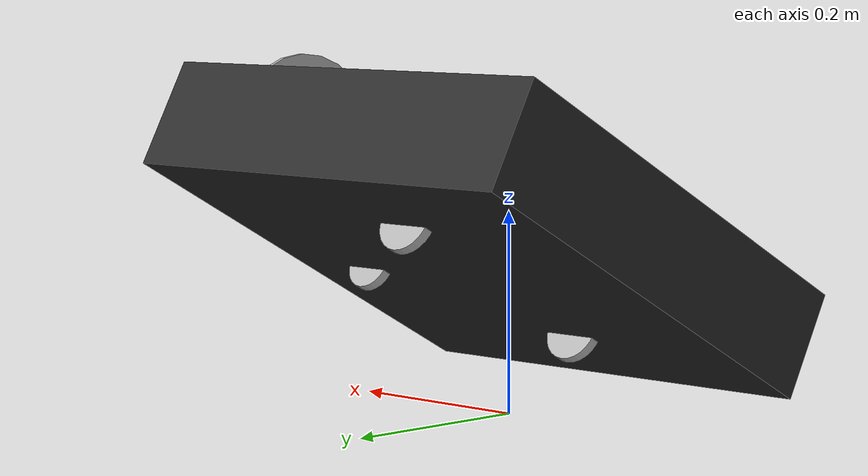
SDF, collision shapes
<?xml version="1.0"?>
<sdf version='1.5'>
  <model name='advanced_plane'>
    <pose>0 0 0.246 0.5 0 0</pose>
    <link name='base_link'>
      <pose>0 0 0 0 0 0</pose>
      <inertial>
        <pose>0 0 0 0 0 0</pose>
        <mass>0.1</mass>
        <inertia>
          <ixx>0.197563</ixx>
          <ixy>0</ixy>
          <ixz>0</ixz>
          <iyy>0.1458929</iyy>
          <iyz>0</iyz>
          <izz>0.1477</izz>
        </inertia>
      </inertial>
      <collision name='base_link_collision'>
        <pose>0 0 -0.07 0 0 0</pose>
        <geometry>
          <box>
            <size>0.47 0.47 0.11</size>
          </box>
        </geometry>
        <surface>
          <contact>
            <ode>
              <max_vel>10</max_vel>
              <min_depth>0.01</min_depth>
            </ode>
          </contact>
          <friction>
            <ode/>
          </friction>
        </surface>
      </collision>
      <visual name='base_link_visual'>
        <pose>0 0 0.5 0 3.14159 3.14159</pose>
        <geometry>
          <mesh>
            <scale>0.00013 0.00013 0.00013</scale>
            <uri>model://paraglider/meshes/strato3D.dae</uri>
          </mesh>
        </geometry>
        <material>
	        <ambient>.175 .175 .175 1.0</ambient>
          <diffuse>.175 .175 .175 1.0</diffuse>
        </material>
      </visual>
      <gravity>1</gravity>
      <velocity_decay/>
      <self_collide>0</self_collide>
      <sensor name="imu_sensor" type="imu">
        <always_on>1</always_on>
        <update_rate>250</update_rate>
        <imu>
          <angular_velocity>
            <x>
              <noise type="gaussian">
                <mean>0</mean>
                <stddev>0.0003394</stddev>
                <dynamic_bias_stddev>3.8785e-05</dynamic_bias_stddev>
                <dynamic_bias_correlation_time>1000</dynamic_bias_correlation_time>
              </noise>
            </x>
            <y>
              <noise type="gaussian">
                <mean>0</mean>
                <stddev>0.0003394</stddev>
                <dynamic_bias_stddev>3.8785e-05</dynamic_bias_stddev>
                <dynamic_bias_correlation_time>1000</dynamic_bias_correlation_time>
              </noise>
            </y>
            <z>
              <noise type="gaussian">
                <mean>0</mean>
                <stddev>0.0003394</stddev>
                <dynamic_bias_stddev>3.8785e-05</dynamic_bias_stddev>
                <dynamic_bias_correlation_time>1000</dynamic_bias_correlation_time>
              </noise>
            </z>
          </angular_velocity>
          <linear_acceleration>
            <x>
              <noise type="gaussian">
                <mean>0</mean>
                <stddev>0.004</stddev>
                <dynamic_bias_stddev>0.006</dynamic_bias_stddev>
                <dynamic_bias_correlation_time>300</dynamic_bias_correlation_time>
              </noise>
            </x>
            <y>
              <noise type="gaussian">
                <mean>0</mean>
                <stddev>0.004</stddev>
                <dynamic_bias_stddev>0.006</dynamic_bias_stddev>
                <dynamic_bias_correlation_time>300</dynamic_bias_correlation_time>
              </noise>
            </y>
            <z>
              <noise type="gaussian">
                <mean>0</mean>
                <stddev>0.004</stddev>
                <dynamic_bias_stddev>0.006</dynamic_bias_stddev>
                <dynamic_bias_correlation_time>300</dynamic_bias_correlation_time>
              </noise>
            </z>
          </linear_acceleration>
        </imu>
      </sensor>
      <sensor name="air_pressure_sensor" type="air_pressure">
        <always_on>1</always_on>
        <update_rate>50</update_rate>
        <air_pressure>
          <pressure>
            <noise type="gaussian">
              <mean>0</mean>
              <stddev>0.01</stddev>
            </noise>
          </pressure>
        </air_pressure>
      </sensor>
      <sensor name="navsat_sensor" type="navsat">
        <always_on>1</always_on>
        <update_rate>30</update_rate>
      </sensor>
    </link>
    <link name='rotor_puller'>
      <pose>0.3 0 0.0 0 1.57 0</pose>
      <inertial>
        <pose>0 0 0 0 0 0</pose>
        <mass>0.005</mass>
        <inertia>
          <ixx>9.75e-07</ixx>
          <ixy>0</ixy>
          <ixz>0</ixz>
          <iyy>0.000166704</iyy>
          <iyz>0</iyz>
          <izz>0.000167604</izz>
        </inertia>
      </inertial>
      <collision name='rotor_puller_collision'>
        <pose>0.0 0 0.0 0 0 0</pose>
        <geometry>
          <cylinder>
            <length>0.005</length>
            <radius>0.1</radius>
          </cylinder>
        </geometry>
        <surface>
          <contact>
            <ode/>
          </contact>
          <friction>
            <ode/>
          </friction>
        </surface>
      </collision>
      <gravity>1</gravity>
      <velocity_decay/>
      <self_collide>0</self_collide>
    </link>
    <joint name='rotor_puller_joint' type='revolute'>
      <child>rotor_puller</child>
      <parent>base_link</parent>
      <axis>
        <xyz>1 0 0</xyz>
        <limit>
          <lower>-1e+16</lower>
          <upper>1e+16</upper>
        </limit>
        <dynamics>
          <spring_reference>0</spring_reference>
          <spring_stiffness>0</spring_stiffness>
        </dynamics>
        <use_parent_model_frame>1</use_parent_model_frame>
      </axis>
    </joint>

    <link name="left_elevon">
      <inertial>
        <mass>0.00000001</mass>
        <inertia>
          <ixx>0.000001</ixx>
          <ixy>0.0</ixy>
          <iyy>0.000001</iyy>
          <ixz>0.0</ixz>
          <iyz>0.0</iyz>
          <izz>0.000001</izz>
        </inertia>
        <pose>0 0.3 0 0.00 0 0.0</pose>
      </inertial>
    </link>
    <link name="right_elevon">
      <inertial>
        <mass>0.00000001</mass>
        <inertia>
          <ixx>0.000001</ixx>
          <ixy>0.0</ixy>
          <iyy>0.000001</iyy>
          <ixz>0.0</ixz>
          <iyz>0.0</iyz>
          <izz>0.000001</izz>
        </inertia>
        <pose>0 -0.3 0 0.00 0 0.0</pose>
      </inertial>
    </link>
    <link name="left_flap">
      <inertial>
        <mass>0.00000001</mass>
        <inertia>
          <ixx>0.000001</ixx>
          <ixy>0.0</ixy>
          <iyy>0.000001</iyy>
          <ixz>0.0</ixz>
          <iyz>0.0</iyz>
          <izz>0.000001</izz>
        </inertia>
        <pose>0 0.15 0 0.00 0 0.0</pose>
      </inertial>
    </link>
    <link name="right_flap">
      <inertial>
        <mass>0.00000001</mass>
        <inertia>
          <ixx>0.000001</ixx>
          <ixy>0.0</ixy>
          <iyy>0.000001</iyy>
          <ixz>0.0</ixz>
          <iyz>0.0</iyz>
          <izz>0.000001</izz>
        </inertia>
        <pose>0 -0.15 0 0.00 0 0.0</pose>
      </inertial>
    </link>
    <link name="elevator">
      <inertial>
        <mass>0.00000001</mass>
        <inertia>
          <ixx>0.000001</ixx>
          <ixy>0.0</ixy>
          <iyy>0.000001</iyy>
          <ixz>0.0</ixz>
          <iyz>0.0</iyz>
          <izz>0.000001</izz>
        </inertia>
        <pose> -0.5 0 0 0.00 0 0.0</pose>
      </inertial>
    </link>
    <joint name='servo_0' type='revolute'>
      <parent>base_link</parent>
      <child>left_elevon</child>
      <pose>-0.07 0.4 0.08 0.00 0 0.0</pose>
      <axis>
        <xyz>0 1 0</xyz>
        <limit>
          <!-- -30/+30 deg. -->
          <lower>-0.53</lower>
          <upper>0.53</upper>
        </limit>
        <dynamics>
          <damping>1.000</damping>
        </dynamics>
      </axis>
      <physics>
        <ode>
          <implicit_spring_damper>1</implicit_spring_damper>
        </ode>
      </physics>
    </joint>
    <plugin
      filename="gz-sim-joint-position-controller-system" name="gz::sim::systems::JointPositionController">
      <joint_name>servo_0</joint_name>
      <sub_topic>servo_0</sub_topic>
      <p_gain>10</p_gain>
      <i_gain>0</i_gain>
      <d_gain>0</d_gain>
    </plugin>
    <joint name='servo_1' type='revolute'>
      <parent>base_link</parent>
      <child>right_elevon</child>
      <pose>-0.07 -0.4 0.08 0.00 0 0.0</pose>
      <axis>
        <xyz>0 1 0</xyz>
        <limit>
          <!-- -30/+30 deg. -->
          <lower>-0.53</lower>
          <upper>0.53</upper>
        </limit>
        <dynamics>
          <damping>1.000</damping>
        </dynamics>
      </axis>
      <physics>
        <ode>
          <implicit_spring_damper>1</implicit_spring_damper>
        </ode>
      </physics>
    </joint>
    <plugin
      filename="gz-sim-joint-position-controller-system" name="gz::sim::systems::JointPositionController">
      <joint_name>servo_1</joint_name>
      <sub_topic>servo_1</sub_topic>
      <p_gain>10</p_gain>
      <i_gain>0</i_gain>
      <d_gain>0</d_gain>
    </plugin>

    <!-- Ajout de roues -->

    <link name="LeftWheel">
      <pose relative_to="LeftWheelJoint">0 0 0 0 0 0</pose>
      <inertial>
        <mass>.05</mass>
        <inertia>
          <ixx>0.00003331</ixx>
          <ixy>0</ixy>
          <ixz>0</ixz>
          <iyy>0.0000204</iyy>
          <iyz>0</iyz>
          <izz>0.0000204</izz>
        </inertia>
      </inertial>
      <gravity>true</gravity>
      <velocity_decay/>
      <collision name="LeftWheelCollision">
        <pose>0 0 0 -1.57079632679 0 0</pose>
        <geometry>
          <cylinder>
            <length>0.01</length>
            <radius>0.03</radius>
          </cylinder>
        </geometry>
        <surface>
          <friction>
            <ode>
              <mu>1.0</mu>
              <mu2>0.5</mu2>
              <fdir1>0 0 1</fdir1>
            </ode>
          </friction>
        </surface>
      </collision>
    </link>
    <link name="RightWheel">
      <pose relative_to="RightWheelJoint">0 0 0 0 0 0</pose>
      <inertial>
        <mass>.05</mass>
        <inertia>
          <ixx>0.00003331</ixx>
          <ixy>0</ixy>
          <ixz>0</ixz>
          <iyy>0.0000204</iyy>
          <iyz>0</iyz>
          <izz>0.0000204</izz>
        </inertia>
      </inertial>
      <gravity>true</gravity>
      <velocity_decay/>
      <collision name="RightWheelCollision">
        <pose>0 0 0 -1.57079632679 0 0</pose>
        <geometry>
          <cylinder>
            <length>0.01</length>
            <radius>0.03</radius>
          </cylinder>
        </geometry>
        <surface>
          <friction>
            <ode>
              <mu>1.0</mu>
              <mu2>0.5</mu2>
              <fdir1>0 0 1</fdir1>
            </ode>
          </friction>
        </surface>
      </collision>
    </link>
    <link name="CenterWheel">
      <pose relative_to="CenterWheelJoint">0 0 0 0 0 0</pose>
      <inertial>
        <mass>.05</mass>
        <inertia>
          <ixx>0.00003331</ixx>
          <ixy>0</ixy>
          <ixz>0</ixz>
          <iyy>0.0000204</iyy>
          <iyz>0</iyz>
          <izz>0.0000204</izz>
        </inertia>
      </inertial>
      <gravity>true</gravity>
      <velocity_decay/>
      <collision name="CenterWheelCollision">
        <pose>0 0 0 -1.57079632679 0 0</pose>
        <geometry>
          <cylinder>
            <length>0.01</length>
            <radius>0.025</radius>
          </cylinder>
        </geometry>
        <surface>
          <friction>
            <ode>
              <mu>1.0</mu>
              <mu2>0.5</mu2>
              <fdir1>0 0 1</fdir1>
            </ode>
          </friction>
        </surface>
      </collision>
    </link>
    <joint name="LeftWheelJoint" type="revolute">
      <parent>base_link</parent>
      <child>LeftWheel</child>
      <pose relative_to="base_link">-.035 .13 -0.12 0 0 0</pose>
      <axis>
        <xyz>0 1 0</xyz>
        <limit>
          <lower>-1.79769e+308</lower>
          <upper>1.79769e+308</upper>
        </limit>
        <dynamics>
          <spring_reference>0</spring_reference>
          <spring_stiffness>0</spring_stiffness>
        </dynamics>
      </axis>
    </joint>
    <joint name="RightWheelJoint" type="revolute">
      <parent>base_link</parent>
      <child>RightWheel</child>
      <pose relative_to="base_link">-.035 -.13 -0.12 0 0 0</pose>
      <axis>
        <xyz>0 1 0</xyz>
        <limit>
          <lower>-1.79769e+308</lower>
          <upper>1.79769e+308</upper>
        </limit>
        <dynamics>
          <spring_reference>0</spring_reference>
          <spring_stiffness>0</spring_stiffness>
        </dynamics>
      </axis>
    </joint>
    <joint name="CenterWheelJoint" type="revolute">
      <parent>base_link</parent>
      <child>CenterWheel</child>
      <pose relative_to="base_link">.135 0 -0.12 0 0 0</pose>
      <axis>
        <xyz>0 1 0</xyz>
        <limit>
          <lower>-1.79769e+308</lower>
          <upper>1.79769e+308</upper>
        </limit>
        <dynamics>
          <spring_reference>0</spring_reference>
          <spring_stiffness>0</spring_stiffness>
        </dynamics>
      </axis>
    </joint>

    <plugin filename="gz-sim-advanced-lift-drag-system" name="gz::sim::systems::AdvancedLiftDrag">
      <a0>-0.00349066</a0>
      <CL0>1.15188</CL0>
      <AR>6.5</AR>
      <eff>0.97</eff>
      <CLa>5.015</CLa>
      <CD0>0.029</CD0>
      <Cem0>0.075</Cem0>
      <Cema>-0.463966</Cema>
      <CYb>-0.258244</CYb>
      <Cellb>-0.039250</Cellb>
      <Cenb>0.100826</Cenb>
      <CDp>0.0</CDp>
      <CYp>0.065861</CYp>
      <CLp>0.0</CLp>
      <Cellp>-0.487407</Cellp>
      <Cemp>0.0</Cemp>
      <Cenp>-0.040416</Cenp>
      <CDq>0.055166</CDq>
      <CYq>0.0</CYq>
      <CLq>7.971792</CLq>
      <Cellq>0.0</Cellq>
      <Cemq>-12.140140</Cemq>
      <Cenq>0.0</Cenq>
      <CDr>0.0</CDr>
      <CYr>0.230299</CYr>
      <CLr>0.0</CLr>
      <Cellr>0.078165</Cellr>
      <Cemr>0.0</Cemr>
      <Cenr>-0.089947</Cenr>
      <alpha_stall>0.3391428111</alpha_stall>
      <CLa_stall>-3.85</CLa_stall>
      <CDa_stall>-0.9233984055</CDa_stall>
      <Cema_stall>0</Cema_stall>
      <cp>-0.12 0.0 0.0</cp>
      <area>1.0</area>
      <mac>0.22</mac>
      <air_density>1.2041</air_density>
      <forward>1 0 0</forward>
      <upward>0 0 1</upward>
      <link_name>base_link</link_name>
      <num_ctrl_surfaces>2</num_ctrl_surfaces>
      <control_surface>
        <name>servo_0</name>
        <index>0</index>
        <direction>1</direction>
        <CD_ctrl>-0.000059</CD_ctrl>
        <CY_ctrl>0.000171</CY_ctrl>
        <CL_ctrl>-0.011940</CL_ctrl>
        <Cell_ctrl>-0.003331</Cell_ctrl>
        <Cem_ctrl>0.001498</Cem_ctrl>
        <Cen_ctrl>-0.000057</Cen_ctrl>
      </control_surface>
      <control_surface>
        <name>servo_1</name>
        <direction>1</direction>
        <index>1</index>
        <CD_ctrl>-0.000059</CD_ctrl>
        <CY_ctrl>-0.000171</CY_ctrl>
        <CL_ctrl>-0.011940</CL_ctrl>
        <Cell_ctrl>0.003331</Cell_ctrl>
        <Cem_ctrl>0.001498</Cem_ctrl>
        <Cen_ctrl>0.000057</Cen_ctrl>
      </control_surface>
    </plugin>
    <plugin filename="gz-sim-multicopter-motor-model-system" name="gz::sim::systems::MulticopterMotorModel">
      <jointName>rotor_puller_joint</jointName>
      <linkName>rotor_puller</linkName>
      <turningDirection>cw</turningDirection>
      <timeConstantUp>0.0125</timeConstantUp>
      <timeConstantDown>0.025</timeConstantDown>
      <maxRotVelocity>3500</maxRotVelocity>
      <motorConstant>8.54858e-07</motorConstant>
      <momentConstant>0.01</momentConstant>
      <commandSubTopic>command/motor_speed</commandSubTopic>
      <motorNumber>0</motorNumber>
      <rotorDragCoefficient>8.06428e-05</rotorDragCoefficient>
      <rollingMomentCoefficient>1e-06</rollingMomentCoefficient>
      <rotorVelocitySlowdownSim>10</rotorVelocitySlowdownSim>
      <motorType>velocity</motorType>

    </plugin>
  </model>
</sdf>
